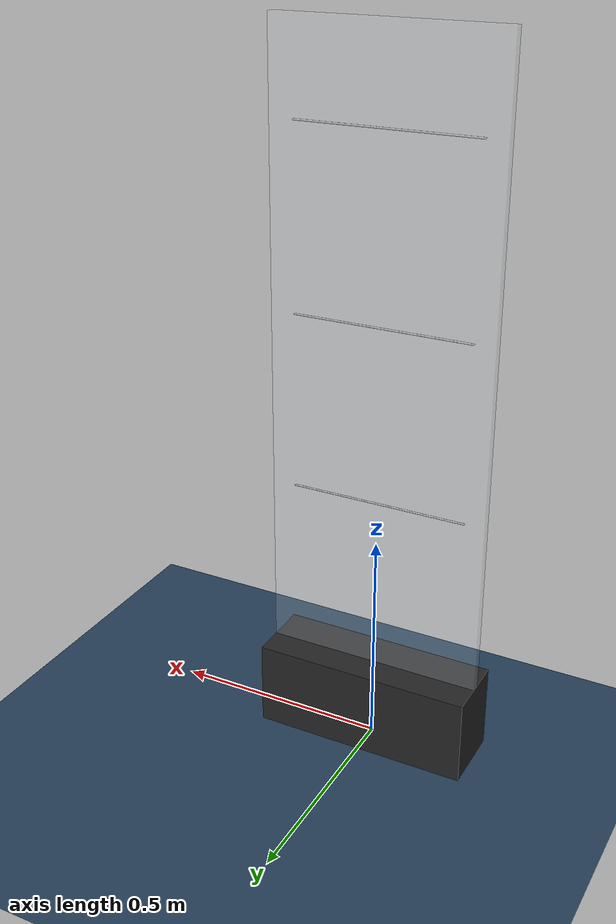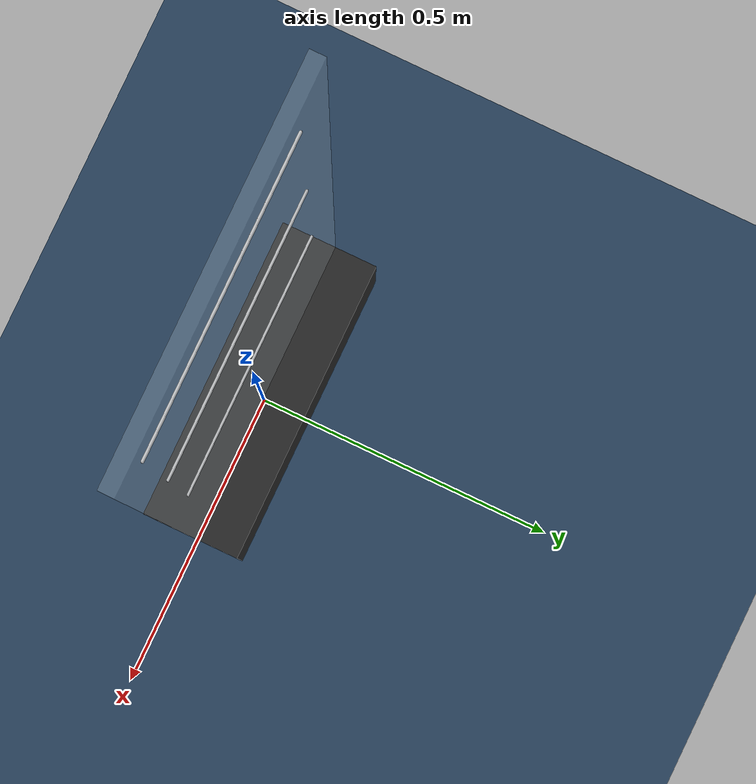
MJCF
<mujoco model="security_gate">
  <compiler angle="degree" coordinate="local"/>
  <option timestep="0.002"/>

  <asset>
    <texture type="skybox" builtin="gradient" rgb1="1 1 1" rgb2="0.6 0.8 1" width="256" height="256"/>
    <texture name="grid" type="2d" builtin="checker" rgb1=".1 .2 .3" rgb2=".2 .3 .4" width="300" height="300" mark="edge" markrgb=".2 .3 .4"/>
    <material name="grid" texture="grid" texrepeat="2 2" texuniform="true" reflectance=".2"/>

    <!-- Materials for the gate -->
    <material name="acrylic_clear" rgba="0.9 0.95 1.0 0.2" shininess="0.8" reflectance="0.3" specular="0.5"/>
    <material name="base_metal" rgba="0.15 0.15 0.15 1" shininess="0.6" reflectance="0.4"/>
    <material name="led_indicator" rgba="0 1 0 0.8" emission="0.8"/>
    <material name="logo_text" rgba="0.8 0.8 0.8 1"/>
  </asset>

  <worldbody>
    <light pos="0 0 3" dir="0 0 -1" directional="true"/>
    <geom name="floor" size="3 3 .05" type="plane" material="grid" condim="3"/>

    <!-- Single Gate Unit -->
    <body name="gate" pos="0 0 0">
      <!-- Base Unit -->
      <geom name="base" type="box" size="0.25 0.08 0.1" pos="0 0 0.1" material="base_metal"/>

      <!-- Main Transparent Panel -->
      <geom name="panel" type="box" size="0.25 0.01 0.7" pos="0 0 0.9" material="acrylic_clear"/>

      <!-- Decorative/Functional horizontal bars (simulating the antenna loops visible in transparent gates) -->
      <geom name="wire_top" type="capsule" fromto="-0.2 0 1.4 0.2 0 1.4" size="0.002" material="logo_text"/>
      <geom name="wire_mid" type="capsule" fromto="-0.2 0 1.0 0.2 0 1.0" size="0.002" material="logo_text"/>
      <geom name="wire_bot" type="capsule" fromto="-0.2 0 0.6 0.2 0 0.6" size="0.002" material="logo_text"/>
    </body>

  </worldbody>
</mujoco>
